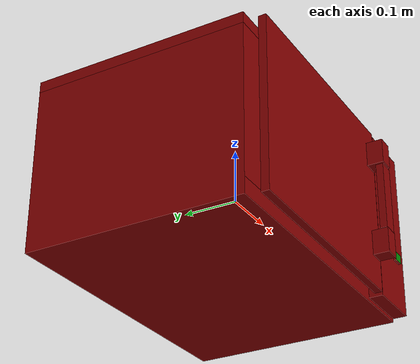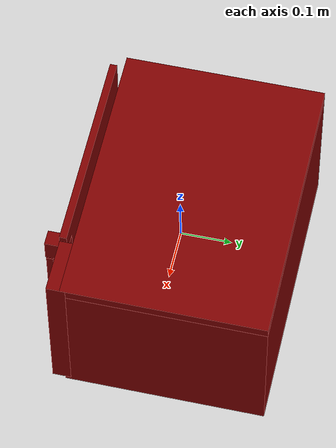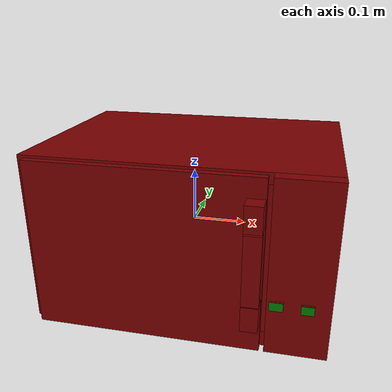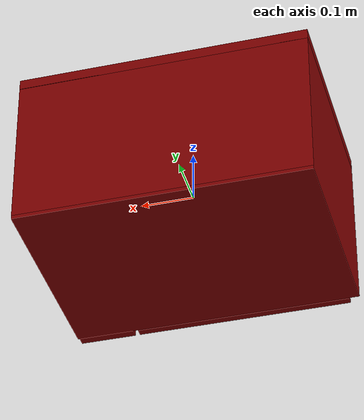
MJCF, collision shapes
<?xml version='1.0' encoding='UTF-8'?>
<mujoco model="model">
  <option timestep="0.002" gravity="0.0 0.0 -9.81"/>
  <compiler angle="radian"/>
  <asset>
    <mesh file="visuals/door.obj" name="door_vis"/>
    <mesh file="visuals/door_Clear.obj" name="door_Clear_vis"/>
    <mesh file="visuals/Body001.obj" name="Body001_vis"/>
    <mesh file="visuals/Button001.obj" name="Button001_vis"/>
    <mesh file="visuals/Button002.obj" name="Button002_vis"/>
    <mesh file="visuals/Disc001.obj" name="Disc001_vis"/>
    <texture file="visuals/T_BC001.png" name="Body001_material" type="2d"/>
    <material name="Body001_material" rgba="1 1 1 1.0" texture="Body001_material" shininess="0.1" specular="2"/>
    <texture file="visuals/T_BC001.png" name="door_material" type="2d"/>
    <material name="door_material" rgba="1 1 1 1.0" texture="door_material" shininess="0.1" specular="0.99"/>
    <material name="door_Clear_material" rgba="0.012270155362784863 0.012270155362784863 0.012270155362784863 0.8397825360298157" shininess="0.1" specular="0.99"/>
    <texture file="visuals/T_BC001.png" name="Button001_material" type="2d"/>
    <material name="Button001_material" rgba="1 1 1 1.0" texture="Button001_material" shininess="0.1" specular="0.99"/>
    <texture file="visuals/T_BC001.png" name="Button002_material" type="2d"/>
    <material name="Button002_material" rgba="1 1 1 1.0" texture="Button002_material" shininess="0.1" specular="0.99"/>
    <texture file="visuals/T_BC001.png" name="Disc001_material" type="2d"/>
    <material name="Disc001_material" rgba="1 1 1 1.0" texture="Disc001_material" shininess="0.1" specular="0.99"/>
  </asset>
  <default>
    <default class="visual">
      <geom conaffinity="0" contype="0" group="1" type="mesh"/>
    </default>
    <default class="collision">
      <geom group="0" rgba="0.5 0 0 0.5"/>
    </default>
    <default class="spawn">
      <geom group="0" rgba="1 1 1 0.5" contype="0" conaffinity="0"/>
      <site group="0" rgba="1 1 1 0.5"/>
    </default>
    <default class="region">
      <geom group="1" conaffinity="0" contype="0" rgba="0 1 0 0"/>
    </default>
  </default>
  <worldbody>
    <body>
      <body name="object">
        <geom class="collision" type="cylinder" pos="-0.053948815912008286 0.00721850385889411 -0.12552699446678162" size="0.13166728615760803 0.0006402618018910289" quat="1.0 0.0 0.0 0.0" name="tray" rgba="0 1 0 0.5"/>
        <geom class="collision" type="box" pos="0.23246632516384125 -0.19946980476379395 -0.05689051374793053" size="0.010617456398904324 0.0002798598143272102 0.007955159060657024" quat="1.0 0.0 0.0 0.0" name="start_button" rgba="0.0 0.5 0 0.5"/>
        <geom class="collision" type="box" pos="0.1815623790025711 -0.19946980476379395 -0.05655767768621445" size="0.01157171931117773 0.0002798600180540234 0.007955159060657024" quat="1.0 0.0 0.0 0.0" name="stop_button" rgba="0.0 0.5 0 0.5"/>
        <geom mesh="Body001_vis" type="mesh" solimp="0.998 0.998 0.001" solref="0.001 1" friction="0.95 0.3 0.1" class="visual" material="Body001_material"/>
        <geom class="collision" type="box" pos="3.026798367500305e-09 0.028110068291425705 0.14922992885112762" size="0.27094560861587524 0.1948748379945755 0.010673843324184418" quat="1.0 0.0 0.0 0.0"/>
        <geom class="collision" type="box" pos="-0.2460903376340866 0.028110038489103317 -0.009832211770117283" size="0.02485777996480465 0.19487500190734863 0.14944371581077576" quat="1.0 0.0 0.0 0.0"/>
        <geom class="collision" type="box" pos="0.19384488463401794 0.028110068291425705 -0.009643904864788055" size="0.077102892100811 0.19487519562244415 0.14963211119174957" quat="1.0 0.0 0.0 0.0"/>
        <geom class="collision" type="box" pos="-6.868503987789154e-09 0.028110068291425705 -0.14492705464363098" size="0.2709459662437439 0.19487540423870087 0.014358572661876678" quat="1.0 0.0 0.0 0.0"/>
        <geom class="collision" type="box" pos="-6.868503987789154e-09 0.19042719900608063 -0.006353685632348061" size="0.27094608545303345 0.032561030238866806 0.14558152854442596" quat="1.0 0.0 0.0 0.0"/>
        <geom class="collision" type="box" pos="0.21813222765922546 -0.17393672466278076 0.0036033657379448414" size="0.05281565710902214 0.018024057149887085 0.15629954636096954" quat="1.0 0.0 0.0 0.0"/>
        <body name="door">
          <joint axis="0.0 0.0 1.0" pos="-0.2574526071548462 -0.1819857656955719 0.004441767930984497" limited="true" name="microjoint" range="-1.5707963267948966 0.0" type="hinge" damping="1" frictionloss="1" armature=".01" stiffness="0.05"/>
          <geom mesh="door_vis" type="mesh" solimp="0.998 0.998 0.001" solref="0.001 1" friction="0.95 0.3 0.1" class="visual" material="door_material"/>
          <geom class="collision" type="box" pos="-0.05269811302423477 -0.18954874575138092 0.020522303879261017" size="0.16385461390018463 0.0018168184906244278 0.08685800433158875" quat="1.0 0.0 0.0 0.0"/>
          <geom class="collision" type="box" pos="-0.045881107449531555 -0.1879672259092331 0.004750963766127825" size="0.20303361117839813 0.006920710206031799 0.1551530659198761" quat="1.0 0.0 0.0 0.0" name="door_main"/>
          <geom class="collision" type="box" pos="0.14146743714809418 -0.21701546013355255 0.014288303442299366" size="0.014644913375377655 0.0065969196148216724 0.06216118857264519" quat="1.0 0.0 0.0 0.0" name="door_handle_main"/>
          <geom class="collision" type="box" pos="0.14146743714809418 -0.20233699679374695 0.10259798169136047" size="0.014644913375377655 0.022717298939824104 0.022829050198197365" quat="1.0 0.0 0.0 0.0"/>
          <geom class="collision" type="box" pos="0.14146743714809418 -0.20149850845336914 -0.07135457545518875" size="0.014644913375377655 0.02280215173959732 0.02274521067738533" quat="1.0 0.0 0.0 0.0"/>
          <body name="door_Clear">
            <geom mesh="door_Clear_vis" type="mesh" solimp="0.998 0.998 0.001" solref="0.001 1" friction="0.95 0.3 0.1" class="visual" material="door_Clear_material"/>
            <geom class="collision" type="box" pos="-0.05269811302423477 -0.18954874575138092 0.020522303879261017" size="0.16385461390018463 0.0018168184906244278 0.08685800433158875" quat="1.0 0.0 0.0 0.0"/>
          </body>
        </body>
        <body name="Button001">
          <joint axis="0.0 1.0 0.0" pos="0.18114350736141205 -0.1946958601474762 -0.05697348341345787" limited="true" name="Button001_joint" range="0.0 0.003" type="slide" damping="1" frictionloss="1" armature=".01" stiffness="0.05"/>
          <geom mesh="Button001_vis" type="mesh" solimp="0.998 0.998 0.001" solref="0.001 1" friction="0.95 0.3 0.1" class="visual" material="Button001_material"/>
          <geom class="collision" type="box" pos="0.1815623790025711 -0.19658896327018738 -0.05655767768621445" size="0.01157171931117773 0.001951877260580659 0.007955159060657024" quat="1.0 0.0 0.0 0.0"/>
        </body>
        <body name="Button002">
          <joint axis="0.0 1.0 0.0" pos="0.23229819536209106 -0.19503822922706604 -0.05696532875299454" limited="true" name="Button002_joint" range="0.0 0.003" type="slide" damping="1" frictionloss="1" armature=".01" stiffness="0.05"/>
          <geom mesh="Button002_vis" type="mesh" solimp="0.998 0.998 0.001" solref="0.001 1" friction="0.95 0.3 0.1" class="visual" material="Button002_material"/>
          <geom class="collision" type="box" pos="0.23246632516384125 -0.19658896327018738 -0.05689051374793053" size="0.010617456398904324 0.001951877260580659 0.007955159060657024" quat="1.0 0.0 0.0 0.0"/>
        </body>
        <body name="Disc001">
          <joint axis="0.0 0.0 -1.0" pos="-0.05321287363767624 0.00750887393951416 -0.09866394102573395" limited="false" name="Disc001_joint" range="0 360" type="hinge" damping="1" frictionloss="1" armature=".01" stiffness="0.05"/>
          <geom mesh="Disc001_vis" type="mesh" solimp="0.998 0.998 0.001" solref="0.001 1" friction="0.95 0.3 0.1" class="visual" material="Disc001_material"/>
          <geom class="collision" type="cylinder" pos="-0.053948815912008286 0.00721850385889411 -0.12761902809143066" size="0.13166752457618713 0.0010193423368036747" quat="1.0 0.0 0.0 0.0"/>
        </body>
        <geom class="region" name="reg_int" type="box" pos="-0.052042338997125626 -0.005843058228492737 0.004312507808208466" size="0.16355803033709526 0.15909829533100128 0.12901984697580338"/>
        <geom class="region" name="reg_main" type="box" pos="-7.450580596923828e-09 0.01356690376996994 0.0" size="0.2719484398365021 0.2104208598136902 0.16090403294563294"/>
      <geom class="region" name="reg_tray" type="cylinder" pos="-0.053948815912008286 0.00721850385889411 0.004222811059560627" size="0.13166728615760803 0.1281095437244512"/></body>
    </body>
  </worldbody>
  <actuator>
    <motor name="microjoint_actuator" joint="microjoint" gear="10"/>
    <motor name="Button001_joint_actuator" joint="Button001_joint" gear="0.5"/>
    <motor name="Button002_joint_actuator" joint="Button002_joint" gear="0.5"/>
    <motor name="Disc001_joint_actuator" joint="Disc001_joint" gear="0.5"/>
  </actuator>
</mujoco>
